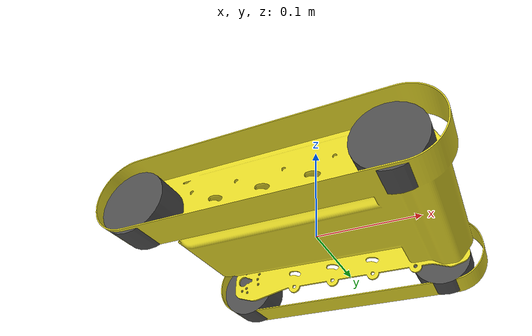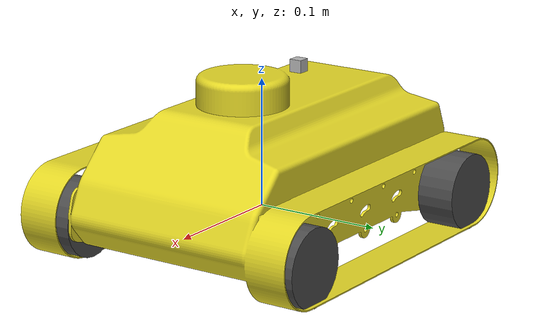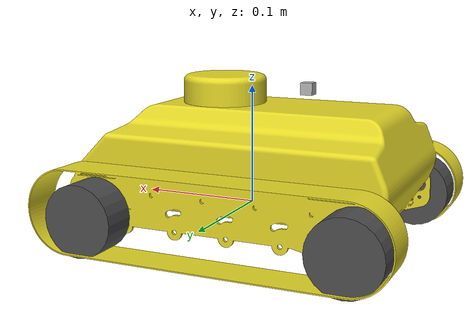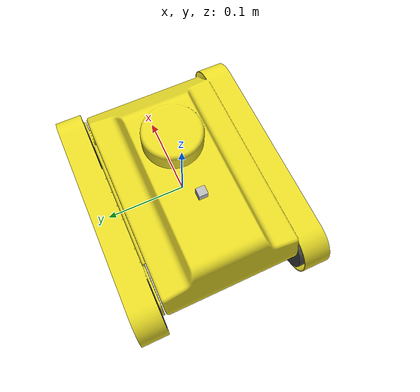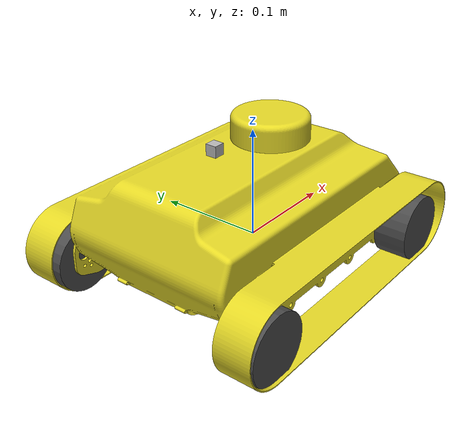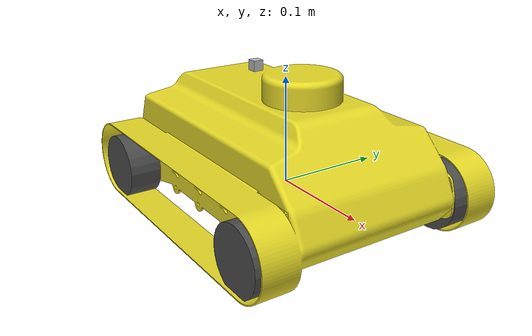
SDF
<?xml version='1.0'?>
<sdf version="1.4">
  <model name="tank">

    <link name="base_link">
      <self_collide>0</self_collide>
      <pose>0 0 0.04 0 0 0</pose>

      <inertial>
        <pose>0 0 0 0 0 0</pose>
        <mass>10.0</mass>
        <inertia>
          <ixx>0.2</ixx>
          <ixy>0.0</ixy>
          <ixz>0.0</ixz>
          <iyy>0.3</iyy>
          <iyz>0.0</iyz>
          <izz>0.4</izz>
        </inertia>
      </inertial>

      <collision name="base_link_collision">
        <geometry>
          <box>
            <size>0.32 0.16 0.1</size>
          </box>
        </geometry>
      </collision>

      <visual name="base_link_visual">
        <geometry>
          <mesh>
          <scale>0.001 0.001 0.001</scale>
          <uri>model://tank/meshes/tank.stl</uri>
          </mesh>
        </geometry>
        <material>
          <script>
            <name>Gazebo/DarkYellow</name>
            <uri>__default__</uri>
          </script>
        </material>
      </visual>

    </link>

    <!-- Wheel 1 -->

    <link name="drum1">
      <self_collide>1</self_collide>
      <pose>0.1 0.1 0 1.57079632679 0 0</pose>

      <inertial>
        <pose>0 0 0 1.57 0 0</pose>
        <mass>0.4</mass>
        <inertia>
          <ixx>0.0003</ixx>
          <ixy>0</ixy>
          <ixz>0</ixz>
          <iyy>0.0003</iyy>
          <iyz>0</iyz>
          <izz>0.0004</izz>
        </inertia>
      </inertial>

      <collision name="drum1_collision">
        <geometry>
          <cylinder>
            <radius>0.03</radius>
            <length>0.03</length>
          </cylinder>
        </geometry>
      </collision>

      <visual name="drum1_visual">
        <geometry>
          <cylinder>
            <radius>0.03</radius>
            <length>0.03</length>
          </cylinder>
        </geometry>
        <material>
          <script>
            <name>Gazebo/DarkGrey</name>
            <uri>__default__</uri>
          </script>
        </material>
      </visual>

    </link>

    <joint type="revolute" name="drum_joint1">
      <pose>0 0 0 0 0 0</pose>
      <parent>base_link</parent>
      <child>drum1</child>
      <axis>
        <xyz>0 1 0</xyz>
      </axis>
    </joint>

    <!-- Wheel 2 -->

    <link name="drum2">
      <self_collide>1</self_collide>
      <pose>0.1 -0.1 0 1.57079632679 0 0</pose>

      <inertial>
        <pose>0 0 0 1.57 0 0</pose>
        <mass>0.4</mass>
        <inertia>
          <ixx>0.0003</ixx>
          <ixy>0</ixy>
          <ixz>0</ixz>
          <iyy>0.0003</iyy>
          <iyz>0</iyz>
          <izz>0.0004</izz>
        </inertia>
      </inertial>

      <collision name="drum2_collision">
        <geometry>
          <cylinder>
            <radius>0.03</radius>
            <length>0.03</length>
          </cylinder>
        </geometry>
      </collision>

      <visual name="drum2_visual">
        <geometry>
          <cylinder>
            <radius>0.03</radius>
            <length>0.03</length>
          </cylinder>
        </geometry>
        <material>
          <script>
            <name>Gazebo/DarkGrey</name>
            <uri>__default__</uri>
          </script>
        </material>
      </visual>

    </link>

    <joint type="revolute" name="drum_joint2">
      <pose>0 0 0 0 0 0</pose>
      <parent>base_link</parent>
      <child>drum2</child>
      <axis>
        <xyz>0 1 0</xyz>
      </axis>
    </joint>

    <!-- Wheel 3 -->

    <link name="drum3">
      <self_collide>1</self_collide>
      <pose>-0.12 0.1 0 1.57079632679 0 0</pose>

      <inertial>
        <pose>0 0 0 1.57 0 0</pose>
        <mass>0.4</mass>
        <inertia>
          <ixx>0.0003</ixx>
          <ixy>0</ixy>
          <ixz>0</ixz>
          <iyy>0.0003</iyy>
          <iyz>0</iyz>
          <izz>0.0004</izz>
        </inertia>
      </inertial>

      <collision name="drum3_collision">
        <geometry>
          <cylinder>
            <radius>0.03</radius>
            <length>0.03</length>
          </cylinder>
        </geometry>
      </collision>

      <visual name="drum3_visual">
        <geometry>
          <cylinder>
            <radius>0.03</radius>
            <length>0.03</length>
          </cylinder>
        </geometry>
        <material>
          <script>
            <name>Gazebo/DarkGrey</name>
            <uri>__default__</uri>
          </script>
        </material>
      </visual>

    </link>

    <joint type="revolute" name="drum_joint3">
      <pose>0 0 0 0 0 0</pose>
      <parent>base_link</parent>
      <child>drum3</child>
      <axis>
        <xyz>0 1 0</xyz>
      </axis>
    </joint>

    <!-- Wheel 4 -->

    <link name="drum4">
      <self_collide>1</self_collide>
      <pose>-0.12 -0.1 0 1.57079632679 0 0</pose>

      <inertial>
        <pose>0 0 0 1.57 0 0</pose>
        <mass>0.4</mass>
        <inertia>
          <ixx>0.0003</ixx>
          <ixy>0</ixy>
          <ixz>0</ixz>
          <iyy>0.0003</iyy>
          <iyz>0</iyz>
          <izz>0.0004</izz>
        </inertia>
      </inertial>

      <collision name="drum4_collision">
        <geometry>
          <cylinder>
            <radius>0.03</radius>
            <length>0.03</length>
          </cylinder>
        </geometry>
      </collision>

      <visual name="drum4_visual">
        <geometry>
          <cylinder>
            <radius>0.03</radius>
            <length>0.03</length>
          </cylinder>
        </geometry>
        <material>
          <script>
            <name>Gazebo/DarkGrey</name>
            <uri>__default__</uri>
          </script>
        </material>
      </visual>

    </link>

    <joint type="revolute" name="drum_joint4">
      <pose>0 0 0 0 0 0</pose>
      <parent>base_link</parent>
      <child>drum4</child>
      <axis>
        <xyz>0 1 0</xyz>
      </axis>
    </joint>

    <!-- Camera -->

    <link name='camera_link'>
      <pose>-0.05 0 0.1 0 0 3.14</pose>

      <inertial>
        <pose>0 0 0 0 0 0</pose>
        <mass>0.015</mass>
        <inertia>
          <ixx>1e-05</ixx>
          <ixy>0</ixy>
          <ixz>0</ixz>
          <iyy>1e-05</iyy>
          <iyz>0</iyz>
          <izz>1e-05</izz>
        </inertia>
      </inertial>

      <visual name='visual'>
        <geometry>
          <box>
            <size>0.01 0.01 0.01</size>
          </box>
        </geometry>
      </visual>

      <sensor name='camera' type='camera'>
        <camera name='__default__'>
          <horizontal_fov>1.047</horizontal_fov>
          <image>
            <width>320</width>
            <height>240</height>
          </image>
          <clip>
            <near>0.1</near>
            <far>100</far>
          </clip>
          <lens>
            <type>custom</type>
            <custom_function>
              <c1>1.05</c1>
              <c2>4</c2>
              <f>1</f>
              <fun>tan</fun>
            </custom_function>
            <scale_to_hfov>1</scale_to_hfov>
            <cutoff_angle>3.1415</cutoff_angle>
            <env_texture_size>1080</env_texture_size>
          </lens>
        </camera>
        <always_on>1</always_on>
        <update_rate>30</update_rate>
        <visualize>1</visualize>
        <plugin name='camera_plugin' filename='libgazebo_ros_camera.so'>
          <alwaysOn>true</alwaysOn>
          <imageTopicName>image_raw</imageTopicName>
          <cameraInfoTopicName>camera_info</cameraInfoTopicName>
          <updateRate>30.0</updateRate>
          <cameraName>main_camera</cameraName>
          <frameName>/main_camera_frame</frameName>
          <CxPrime>320.5</CxPrime>
          <Cx>320.5</Cx>
          <Cy>240.5</Cy>
          <hackBaseline>0</hackBaseline>
          <focalLength>277.191356</focalLength>
          <distortionK1>0.0</distortionK1>
          <distortionK2>0.0</distortionK2>
          <distortionK3>0.0</distortionK3>
          <distortionT1>0.0</distortionT1>
          <distortionT2>0.0</distortionT2>
        </plugin>
        <!-- GStreamer camera plugin (needs a lot of CPU! Consider lowering the
            camera image size) -->
        <plugin name="GstCameraPlugin" filename="libgazebo_gst_camera_plugin.so">
          <robotNamespace></robotNamespace>
          <udpPort>5600</udpPort>
        </plugin>
      </sensor>

      <self_collide>0</self_collide>
      <kinematic>0</kinematic>

    </link>

    <joint name="camera_joint" type="fixed"> <!--can be revolute type-->
      <parent>base_link</parent>
      <child>camera_link</child>
      <pose>0 0 0 0 0 0</pose>
      <axis>
        <xyz>0 0 1</xyz>
      </axis>
    </joint>

    <plugin name="differential_drive_controller" filename="libgazebo_ros_diff_drive.so">
      <!-- Plugin update rate in Hz -->
      <updateRate>30</updateRate>
      <!-- Name of left joint, defaults to `left_joint` -->
      <leftJoint>drum_joint4</leftJoint>
      <!-- Name of right joint, defaults to `right_joint` -->
      <rightJoint>drum_joint3</rightJoint>
      <!-- The distance from the center of one wheel to the other, in meters, defaults to 0.34 m -->
      <wheelSeparation>0.5380</wheelSeparation>
      <!-- Diameter of the wheels, in meters, defaults to 0.15 m -->
      <wheelDiameter>0.2410</wheelDiameter>
      <!-- Wheel acceleration, in rad/s^2, defaults to 0.0 rad/s^2 -->
      <wheelAcceleration>1.0</wheelAcceleration>
      <!-- Maximum torque which the wheels can produce, in Nm, defaults to 5 Nm -->
      <wheelTorque>300</wheelTorque>
      <!-- Topic to receive geometry_msgs/Twist message commands, defaults to `cmd_vel` -->
      <commandTopic>cmd_vel</commandTopic>
      <!-- Topic to publish nav_msgs/Odometry messages, defaults to `odom` -->
      <odometryTopic>robotodom</odometryTopic>
      <!-- Odometry frame, defaults to `odom` -->
      <odometryFrame>robotodom</odometryFrame>
      <!-- Robot frame to calculate odometry from, defaults to `base_footprint` -->
      <robotBaseFrame>base_footprint</robotBaseFrame>
      <!-- Odometry source, 0 for ENCODER, 1 for WORLD, defaults to WORLD -->
      <odometrySource>1</odometrySource>
      <!-- Set to true to publish transforms for the wheel links, defaults to false -->
      <publishWheelTF>true</publishWheelTF>
      <!-- Set to true to publish transforms for the odometry, defaults to true -->
      <publishOdom>true</publishOdom>
      <!-- Set to true to publish sensor_msgs/JointState on /joint_states for the wheel joints, defaults to false -->
      <publishWheelJointState>true</publishWheelJointState>
      <!-- Set to true to swap right and left wheels, defaults to true -->
      <legacyMode>false</legacyMode>
    </plugin>

  </model>
</sdf>
